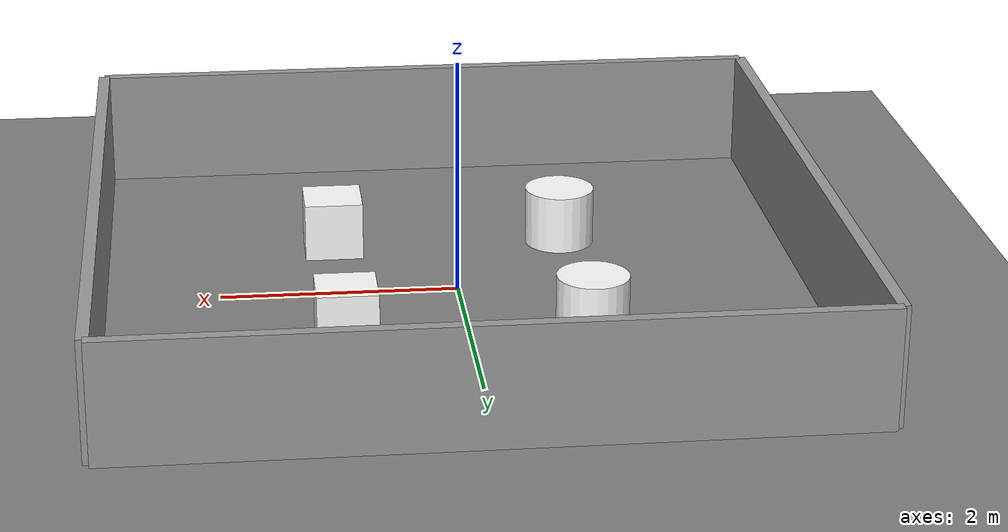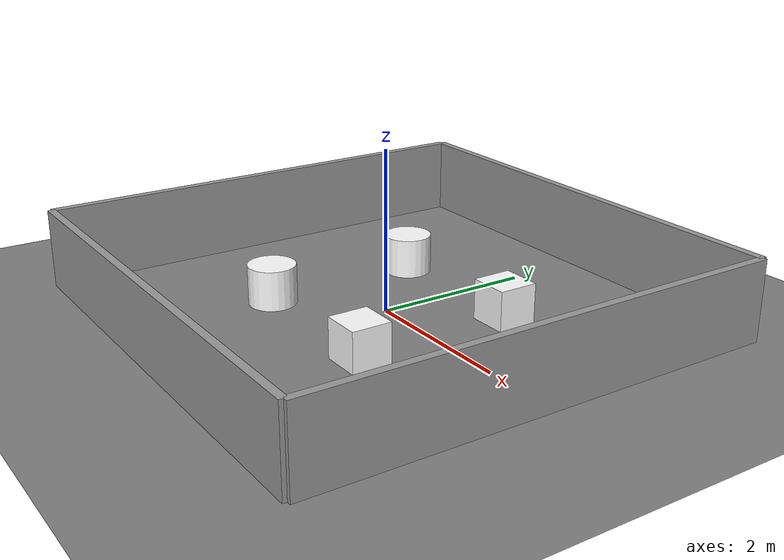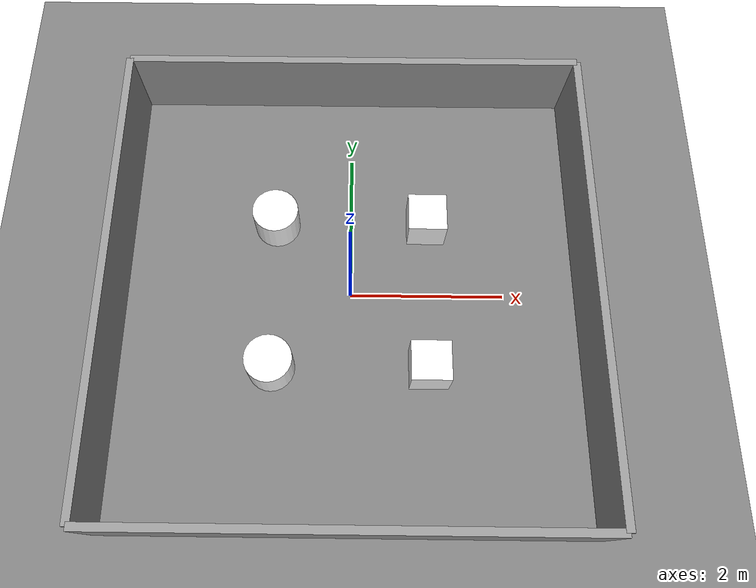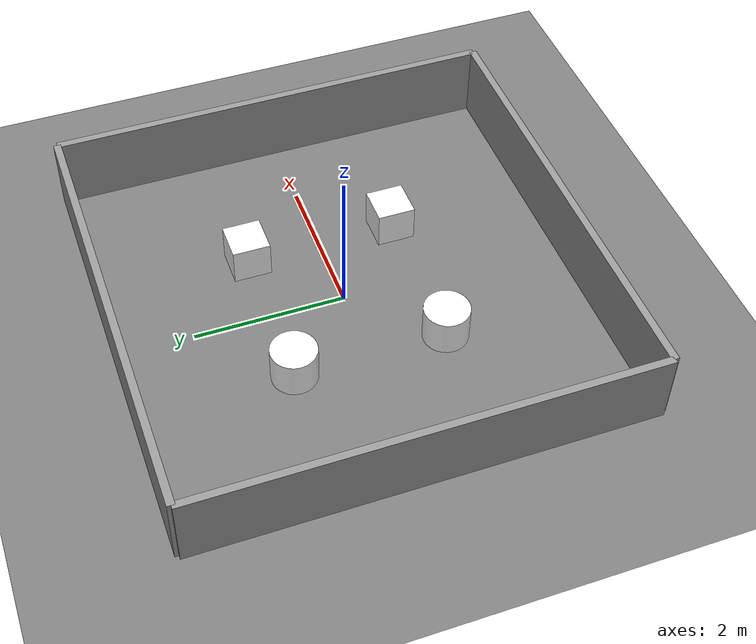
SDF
<?xml version="1.0" ?>
<sdf version="1.6">
  <world name="simple_world">

    <!-- light -->
		<light name="sun" type="directional">
			<cast_shadows>true</cast_shadows>
			<pose>0 0 10 0 -0.5 0</pose>
			<diffuse>1 1 1 1</diffuse>
			<specular>0.1 0.1 0.1 1</specular>
			<attenuation>
				<range>1000</range>
				<constant>0.9</constant>
				<linear>0.01</linear>
				<quadratic>0.001</quadratic>
			</attenuation>
			<direction>-0.5 0.5 -1</direction>
		</light>

		<!-- ground -->
		<model name="ground_plane">
			<static>true</static>
			<link name="link">
				<collision name="collision">
				  <geometry><plane><normal>0 0 1</normal><size>100 100</size></plane></geometry>
				</collision>
				<visual name="visual">
				  <geometry><plane><normal>0 0 1</normal><size>100 100</size></plane></geometry>
				  <material><ambient>0.5 0.5 0.5 1</ambient></material>
				</visual>
			</link>
		</model>

    <!-- Back wall -->
    <model name="back_wall">
      <static>true</static>
      <link name="link">
        <pose>0 -3 0.5 0 0 0</pose>
        <collision name="collision">
          <geometry>
            <box>
              <size>6 0.1 1</size>
            </box>
          </geometry>
        </collision>
        <visual name="visual">
          <geometry>
            <box>
              <size>6 0.1 1</size>
            </box>
          </geometry>
          <material>
            <ambient>0.3 0.3 0.3 1</ambient>
            <diffuse>0.6 0.6 0.6 1</diffuse>
          </material>
        </visual>
      </link>
    </model>

    <!-- Front wall -->
    <model name="front_wall">
      <static>true</static>
      <link name="link">
        <pose>0 3 0.5 0 0 0</pose>
        <collision name="collision">
          <geometry>
            <box><size>6 0.1 1</size></box>
          </geometry>
        </collision>
        <visual name="visual">
          <geometry>
            <box><size>6 0.1 1</size></box>
          </geometry>
          <material>
            <ambient>0.3 0.3 0.3 1</ambient>
            <diffuse>0.6 0.6 0.6 1</diffuse>
          </material>
        </visual>
      </link>
    </model>

    <!-- Left wall -->
    <model name="left_wall">
      <static>true</static>
      <link name="link">
        <pose>-3 0 0.5 0 0 0</pose>
        <collision name="collision">
          <geometry>
            <box><size>0.1 6 1</size></box>
          </geometry>
        </collision>
        <visual name="visual">
          <geometry>
            <box><size>0.1 6 1</size></box>
          </geometry>
          <material>
            <ambient>0.3 0.3 0.3 1</ambient>
            <diffuse>0.6 0.6 0.6 1</diffuse>
          </material>
        </visual>
      </link>
    </model>

    <!-- Right wall -->
    <model name="right_wall">
      <static>true</static>
      <link name="link">
        <pose>3 0 0.5 0 0 0</pose>
        <collision name="collision">
          <geometry>
            <box><size>0.1 6 1</size></box>
          </geometry>
        </collision>
        <visual name="visual">
          <geometry>
            <box><size>0.1 6 1</size></box>
          </geometry>
          <material>
            <ambient>0.3 0.3 0.3 1</ambient>
            <diffuse>0.6 0.6 0.6 1</diffuse>
          </material>
        </visual>
      </link>
    </model>

    <!-- Box 1 -->
    <model name="obstacle_box_1">
      <static>true</static>
      <link name="link">
        <pose>1 1 0.25 0 0 0</pose>
        <collision name="collision">
          <geometry>
            <box>
              <size>0.5 0.5 0.5</size>
            </box>
          </geometry>
        </collision>
        <visual name="visual">
          <geometry><box><size>0.5 0.5 0.5</size></box></geometry>
          <material>
            <ambient>1 1 1 1</ambient>
            <diffuse>1 1 1 1</diffuse>
          </material>
        </visual>
      </link>
    </model>

    <!-- Cylinder 1 -->
    <model name="obstacle_cylinder_1">
      <static>true</static>
      <link name="link">
        <pose>-1 -1 0.25 0 0 0</pose>
        <collision name="collision">
          <geometry><cylinder><radius>0.3</radius><length>0.5</length></cylinder></geometry>
        </collision>
        <visual name="visual">
          <geometry><cylinder><radius>0.3</radius><length>0.5</length></cylinder></geometry>
          <material>
            <ambient>1 1 1 1</ambient>
            <diffuse>1 1 1 1</diffuse>
          </material>
        </visual>
      </link>
    </model>

    <!-- Box 2 -->
    <model name="obstacle_box_2">
      <static>true</static>
      <link name="link">
        <pose>1 -1 0.25 0 0 0</pose>
        <collision name="collision">
          <geometry>
            <box>
              <size>0.5 0.5 0.5</size>
            </box>
          </geometry>
        </collision>
        <visual name="visual">
          <geometry><box><size>0.5 0.5 0.5</size></box></geometry>
          <material>
            <ambient>1 1 1 1</ambient>
            <diffuse>1 1 1 1</diffuse>
          </material>
        </visual>
      </link>
    </model>

    <!-- Cylinder 2 -->
    <model name="obstacle_cylinder_2">
      <static>true</static>
      <link name="link">
        <pose>-1 1 0.25 0 0 0</pose>
        <collision name="collision">
          <geometry><cylinder><radius>0.3</radius><length>0.5</length></cylinder></geometry>
        </collision>
        <visual name="visual">
          <geometry><cylinder><radius>0.3</radius><length>0.5</length></cylinder></geometry>
          <material>
            <ambient>1 1 1 1</ambient>
            <diffuse>1 1 1 1</diffuse>
          </material>
        </visual>
      </link>
    </model>

  </world>
</sdf>
